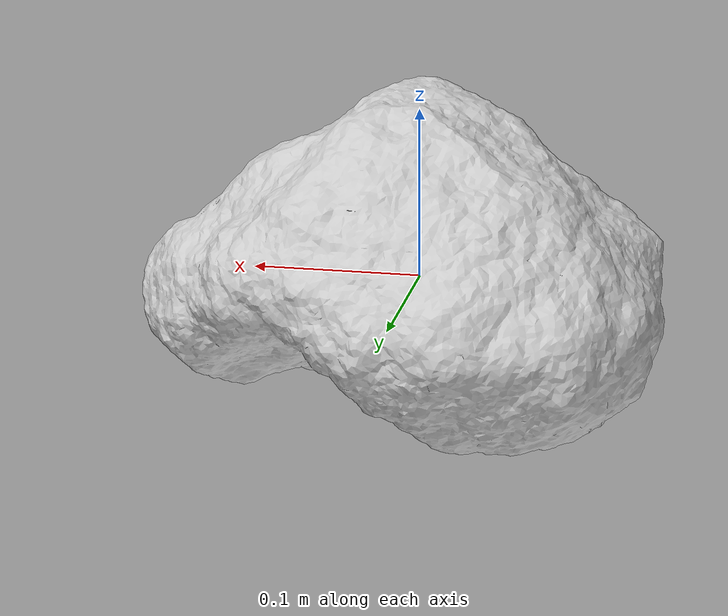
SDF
<?xml version="1.0" ?>
<sdf version="1.7">
    <model name="round_rock">
        <!--pose relative to placement in world-->
        <pose>0 0 0 0 0 0</pose>

        <static>true</static>

        <link name="link">

            <!-- visual model-->
            <visual name="visual">
                <geometry>
                    <mesh>
                        <uri>model://round_rock/meshes/rock_round.dae</uri>
                    </mesh>
                </geometry>

                <material> <!-- mid-grey material-->
                    <ambient>0.8 0.8 0.8 1</ambient>
                    <diffuse>0.8 0.8 0.8 1</diffuse>
                    <specular>0.8 0.8 0.8 1</specular>
                </material>
            </visual>

            <!-- collision geometry-->
            <collision name="collision">
                <geometry>
                    <mesh>
                        <uri>model://round_rock/meshes/rock_round.stl</uri>
                    </mesh>
                </geometry>
                <max_contacts>10</max_contacts> <!--hopefully prevents lag-->
            </collision>

            <inertial>
                <mass>1</mass>
                <inertia>
                <ixx>0.0002</ixx>
                <iyy>0.0002</iyy>
                <izz>0.0002</izz>
                </inertia>
            </inertial>
        </link>
    </model>
</sdf>
